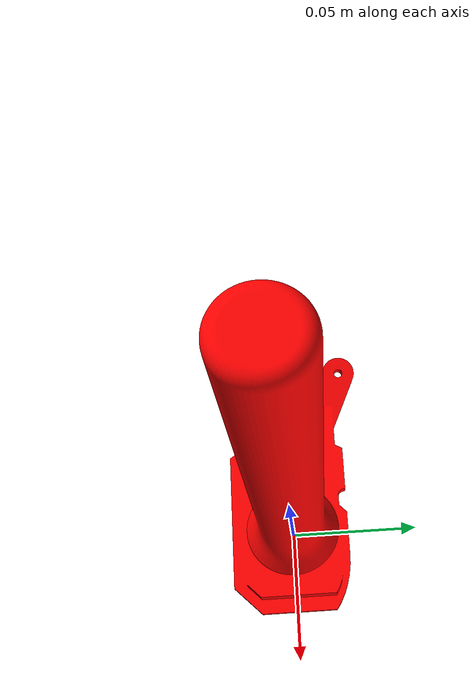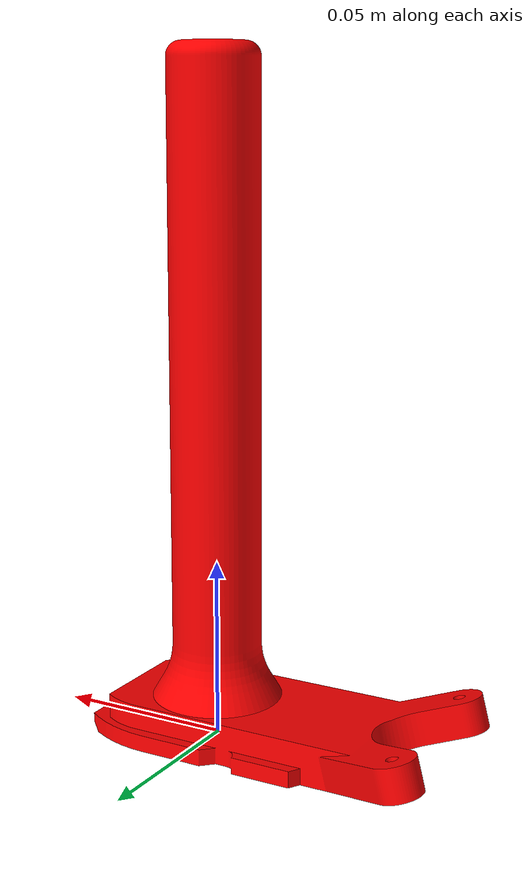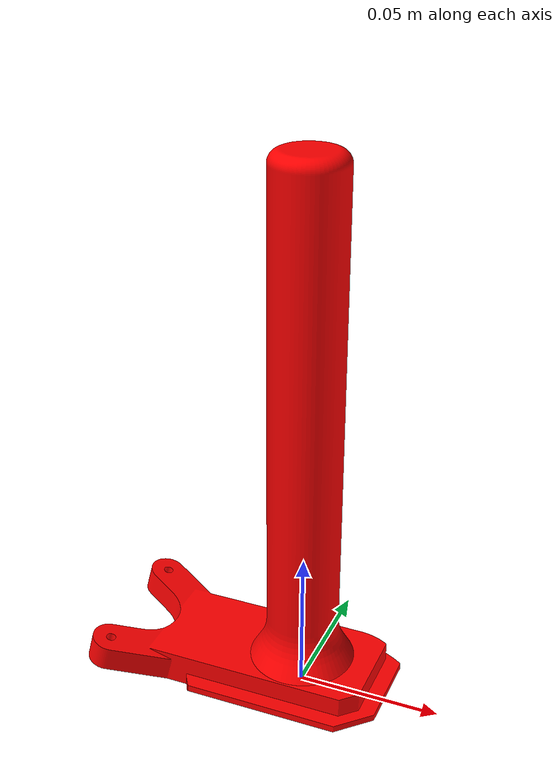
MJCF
<mujoco model="cylinder">
  <default>
    <default class="cylinder">
      <default class="visual">
        <geom group="2" type="mesh" contype="0" conaffinity="0"/>
      </default>
      <default class="collision">
        <geom group="3" type="cylinder" solref="0.004 1"/>
      </default>
      <site group="5" rgba=".9 .2 .2 1" size=".002"/>
    </default>
  </default>

  <asset>
    <material name="black" rgba=".2 .2 .2 1"/>
    <material name="red" rgba="1 0 0 1"/>

    <mesh file="cylinder.obj"/>
  </asset>

  <worldbody>
    <body name="cylinder" childclass="cylinder">
      <geom name="cylinder_visual" class="visual" material="red" mesh="cylinder" mass="0" density="0"/>
      <geom name="cylinder_collision" class="collision" size="0.0125 0.0945" pos="0 0 0.097" density="1240"/>
      <site name="tip" pos="0 0 0.1891"/>
    </body>
  </worldbody>
</mujoco>
